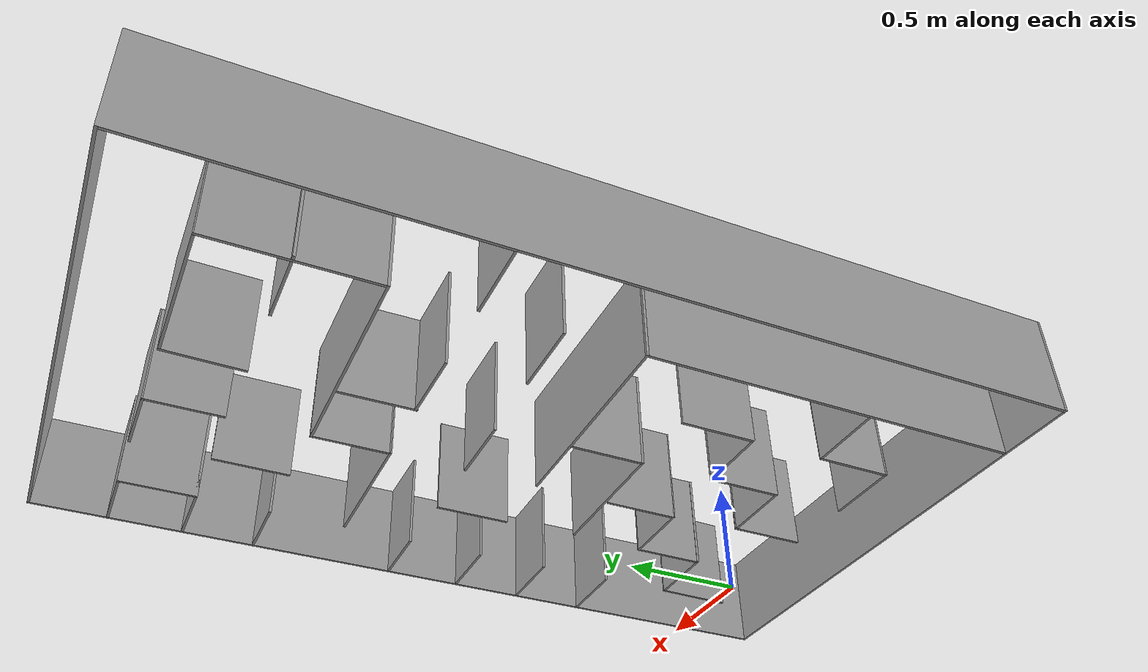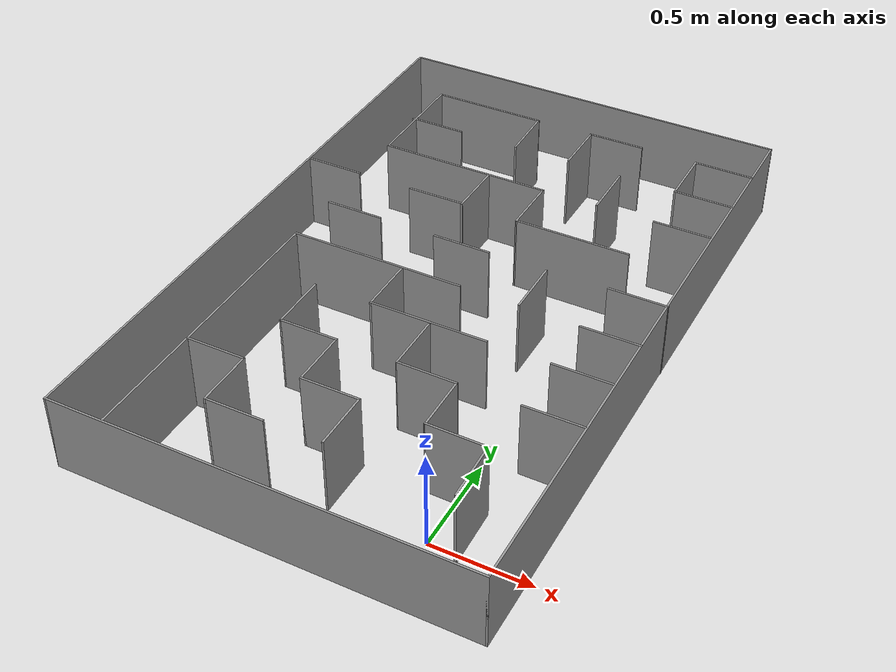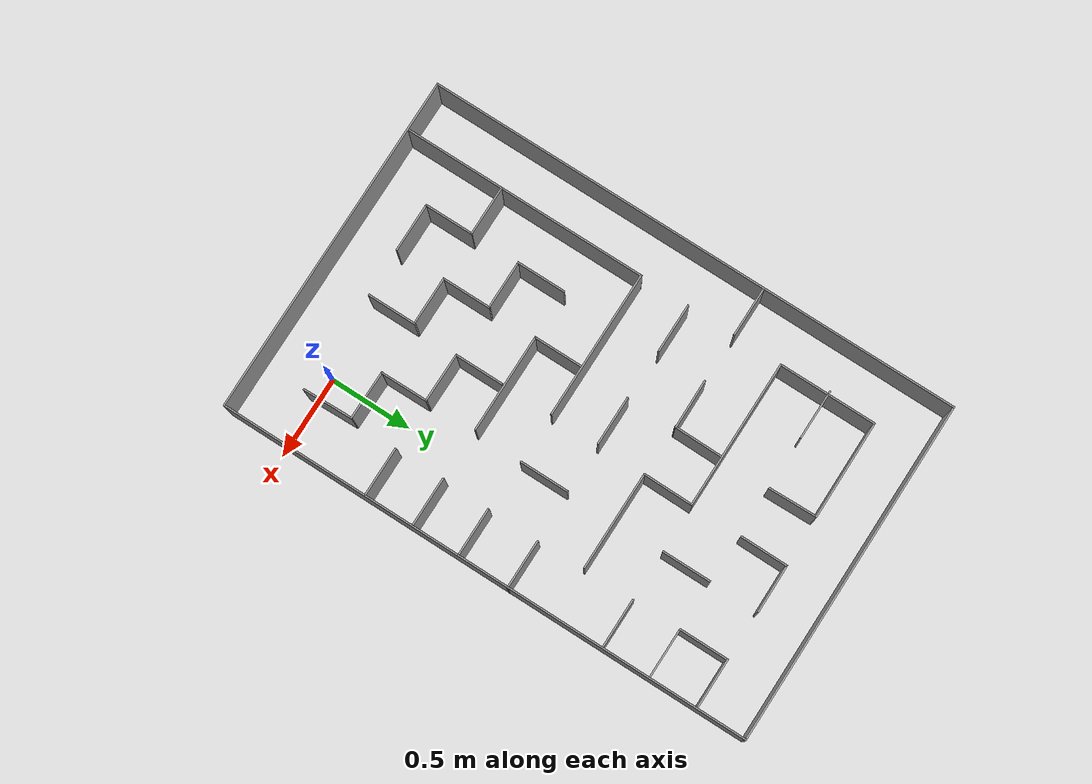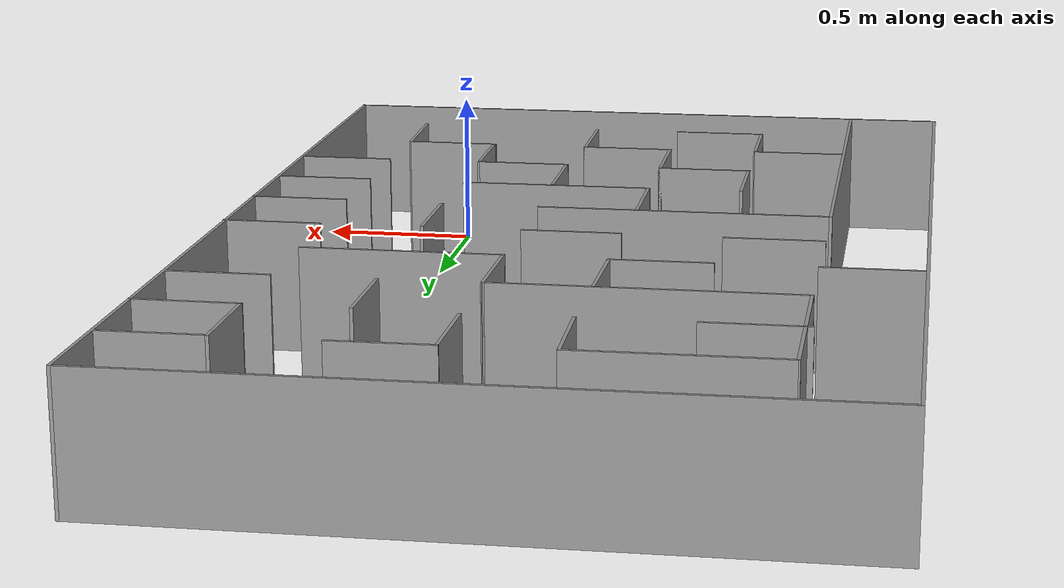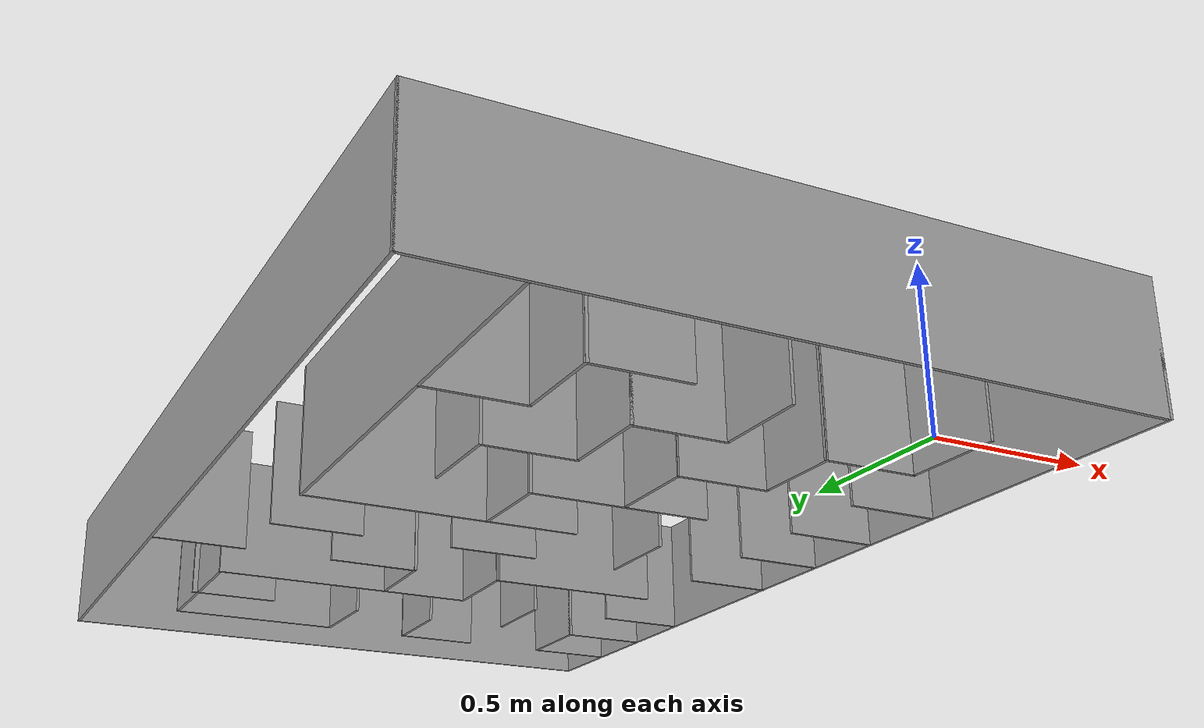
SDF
<?xml version='1.0'?>
<sdf version='1.7'>
  <model name='Labyrinth_30cm'>
    <pose>-0.589 1.293 0 0 -0 0</pose>
    <link name='Wall_0'>
      <collision name='Wall_0_Collision'>
        <geometry>
          <box>
            <size>3.3 0.01 0.4</size>
          </box>
        </geometry>
        <pose>0 0 0.2 0 -0 0</pose>
      </collision>
      <visual name='Wall_0_Visual'>
        <pose>0 0 0.2 0 -0 0</pose>
        <geometry>
          <box>
            <size>3.3 0.01 0.4</size>
          </box>
        </geometry>
        <material>
          <script>
            <uri>file://media/materials/scripts/gazebo.material</uri>
            <name>Gazebo/Grey</name>
          </script>
          <ambient>1 1 1 1</ambient>
        </material>
        <meta>
          <layer>0</layer>
        </meta>
      </visual>
      <pose>-1.046 -0 0 0 -0 1.5708</pose>
    </link>
    <link name='Wall_101'>
      <collision name='Wall_101_Collision'>
        <geometry>
          <box>
            <size>0.310197 0.01 0.4</size>
          </box>
        </geometry>
        <pose>0 0 0.2 0 -0 0</pose>
      </collision>
      <visual name='Wall_101_Visual'>
        <pose>0 0 0.2 0 -0 0</pose>
        <geometry>
          <box>
            <size>0.310197 0.01 0.4</size>
          </box>
        </geometry>
        <material>
          <script>
            <uri>file://media/materials/scripts/gazebo.material</uri>
            <name>Gazebo/Grey</name>
          </script>
          <ambient>1 1 1 1</ambient>
        </material>
        <meta>
          <layer>0</layer>
        </meta>
      </visual>
      <pose>0.890954 1.04525 0 0 -0 3.14159</pose>
    </link>
    <link name='Wall_105'>
      <collision name='Wall_105_Collision'>
        <geometry>
          <box>
            <size>0.306842 0.01 0.4</size>
          </box>
        </geometry>
        <pose>0 0 0.2 0 -0 0</pose>
      </collision>
      <visual name='Wall_105_Visual'>
        <pose>0 0 0.2 0 -0 0</pose>
        <geometry>
          <box>
            <size>0.306842 0.01 0.4</size>
          </box>
        </geometry>
        <material>
          <script>
            <uri>file://media/materials/scripts/gazebo.material</uri>
            <name>Gazebo/Grey</name>
          </script>
          <ambient>1 1 1 1</ambient>
        </material>
        <meta>
          <layer>0</layer>
        </meta>
      </visual>
      <pose>0.740855 1.19365 0 0 -0 1.5708</pose>
    </link>
    <link name='Wall_109'>
      <collision name='Wall_109_Collision'>
        <geometry>
          <box>
            <size>0.311046 0.01 0.4</size>
          </box>
        </geometry>
        <pose>0 0 0.2 0 -0 0</pose>
      </collision>
      <visual name='Wall_109_Visual'>
        <pose>0 0 0.2 0 -0 0</pose>
        <geometry>
          <box>
            <size>0.311046 0.01 0.4</size>
          </box>
        </geometry>
        <material>
          <script>
            <uri>file://media/materials/scripts/gazebo.material</uri>
            <name>Gazebo/Grey</name>
          </script>
          <ambient>1 1 1 1</ambient>
        </material>
        <meta>
          <layer>0</layer>
        </meta>
      </visual>
      <pose>0.891803 1.34205 0 0 -0 0</pose>
    </link>
    <link name='Wall_11'>
      <collision name='Wall_11_Collision'>
        <geometry>
          <box>
            <size>0.9 0.01 0.4</size>
          </box>
        </geometry>
        <pose>0 0 0.2 0 -0 0</pose>
      </collision>
      <visual name='Wall_11_Visual'>
        <pose>0 0 0.2 0 -0 0</pose>
        <geometry>
          <box>
            <size>0.9 0.01 0.4</size>
          </box>
        </geometry>
        <material>
          <script>
            <uri>file://media/materials/scripts/gazebo.material</uri>
            <name>Gazebo/Grey</name>
          </script>
          <ambient>1 1 1 1</ambient>
        </material>
        <meta>
          <layer>0</layer>
        </meta>
      </visual>
      <pose>-0.304 -0.146 0 0 -0 0</pose>
    </link>
    <link name='Wall_13'>
      <collision name='Wall_13_Collision'>
        <geometry>
          <box>
            <size>0.3 0.01 0.4</size>
          </box>
        </geometry>
        <pose>0 0 0.2 0 -0 0</pose>
      </collision>
      <visual name='Wall_13_Visual'>
        <pose>0 0 0.2 0 -0 0</pose>
        <geometry>
          <box>
            <size>0.3 0.01 0.4</size>
          </box>
        </geometry>
        <material>
          <script>
            <uri>file://media/materials/scripts/gazebo.material</uri>
            <name>Gazebo/Grey</name>
          </script>
          <ambient>1 1 1 1</ambient>
        </material>
        <meta>
          <layer>0</layer>
        </meta>
      </visual>
      <pose>-0.453 -0.596 0 0 -0 -1.5708</pose>
    </link>
    <link name='Wall_15'>
      <collision name='Wall_15_Collision'>
        <geometry>
          <box>
            <size>0.3 0.01 0.4</size>
          </box>
        </geometry>
        <pose>0 0 0.2 0 -0 0</pose>
      </collision>
      <visual name='Wall_15_Visual'>
        <pose>0 0 0.2 0 -0 0</pose>
        <geometry>
          <box>
            <size>0.3 0.01 0.4</size>
          </box>
        </geometry>
        <material>
          <script>
            <uri>file://media/materials/scripts/gazebo.material</uri>
            <name>Gazebo/Grey</name>
          </script>
          <ambient>1 1 1 1</ambient>
        </material>
        <meta>
          <layer>0</layer>
        </meta>
      </visual>
      <pose>-0.308 -0.741 0 0 -0 0</pose>
    </link>
    <link name='Wall_17'>
      <collision name='Wall_17_Collision'>
        <geometry>
          <box>
            <size>0.3 0.01 0.4</size>
          </box>
        </geometry>
        <pose>0 0 0.2 0 -0 0</pose>
      </collision>
      <visual name='Wall_17_Visual'>
        <pose>0 0 0.2 0 -0 0</pose>
        <geometry>
          <box>
            <size>0.3 0.01 0.4</size>
          </box>
        </geometry>
        <material>
          <script>
            <uri>file://media/materials/scripts/gazebo.material</uri>
            <name>Gazebo/Grey</name>
          </script>
          <ambient>1 1 1 1</ambient>
        </material>
        <meta>
          <layer>0</layer>
        </meta>
      </visual>
      <pose>-0.163 -0.886 0 0 -0 -1.5708</pose>
    </link>
    <link name='Wall_19'>
      <collision name='Wall_19_Collision'>
        <geometry>
          <box>
            <size>0.3 0.01 0.4</size>
          </box>
        </geometry>
        <pose>0 0 0.2 0 -0 0</pose>
      </collision>
      <visual name='Wall_19_Visual'>
        <pose>0 0 0.2 0 -0 0</pose>
        <geometry>
          <box>
            <size>0.3 0.01 0.4</size>
          </box>
        </geometry>
        <material>
          <script>
            <uri>file://media/materials/scripts/gazebo.material</uri>
            <name>Gazebo/Grey</name>
          </script>
          <ambient>1 1 1 1</ambient>
        </material>
        <meta>
          <layer>0</layer>
        </meta>
      </visual>
      <pose>-0.018 -1.031 0 0 -0 0</pose>
    </link>
    <link name='Wall_2'>
      <collision name='Wall_2_Collision'>
        <geometry>
          <box>
            <size>2.1 0.01 0.4</size>
          </box>
        </geometry>
        <pose>0 0 0.2 0 -0 0</pose>
      </collision>
      <visual name='Wall_2_Visual'>
        <pose>0 0 0.2 0 -0 0</pose>
        <geometry>
          <box>
            <size>2.1 0.01 0.4</size>
          </box>
        </geometry>
        <material>
          <script>
            <uri>file://media/materials/scripts/gazebo.material</uri>
            <name>Gazebo/Grey</name>
          </script>
          <ambient>1 1 1 1</ambient>
        </material>
        <meta>
          <layer>0</layer>
        </meta>
      </visual>
      <pose>-0.001 -1.645 0 0 -0 0</pose>
    </link>
    <link name='Wall_21'>
      <collision name='Wall_21_Collision'>
        <geometry>
          <box>
            <size>0.3 0.01 0.4</size>
          </box>
        </geometry>
        <pose>0 0 0.2 0 -0 0</pose>
      </collision>
      <visual name='Wall_21_Visual'>
        <pose>0 0 0.2 0 -0 0</pose>
        <geometry>
          <box>
            <size>0.3 0.01 0.4</size>
          </box>
        </geometry>
        <material>
          <script>
            <uri>file://media/materials/scripts/gazebo.material</uri>
            <name>Gazebo/Grey</name>
          </script>
          <ambient>1 1 1 1</ambient>
        </material>
        <meta>
          <layer>0</layer>
        </meta>
      </visual>
      <pose>0.127 -1.176 0 0 -0 -1.5708</pose>
    </link>
    <link name='Wall_23'>
      <collision name='Wall_23_Collision'>
        <geometry>
          <box>
            <size>0.3 0.01 0.4</size>
          </box>
        </geometry>
        <pose>0 0 0.2 0 -0 0</pose>
      </collision>
      <visual name='Wall_23_Visual'>
        <pose>0 0 0.2 0 -0 0</pose>
        <geometry>
          <box>
            <size>0.3 0.01 0.4</size>
          </box>
        </geometry>
        <material>
          <script>
            <uri>file://media/materials/scripts/gazebo.material</uri>
            <name>Gazebo/Grey</name>
          </script>
          <ambient>1 1 1 1</ambient>
        </material>
        <meta>
          <layer>0</layer>
        </meta>
      </visual>
      <pose>-0.6 -1.039 0 0 -0 0</pose>
    </link>
    <link name='Wall_26'>
      <collision name='Wall_26_Collision'>
        <geometry>
          <box>
            <size>0.3 0.01 0.4</size>
          </box>
        </geometry>
        <pose>0 0 0.2 0 -0 0</pose>
      </collision>
      <visual name='Wall_26_Visual'>
        <pose>0 0 0.2 0 -0 0</pose>
        <geometry>
          <box>
            <size>0.3 0.01 0.4</size>
          </box>
        </geometry>
        <material>
          <script>
            <uri>file://media/materials/scripts/gazebo.material</uri>
            <name>Gazebo/Grey</name>
          </script>
          <ambient>1 1 1 1</ambient>
        </material>
        <meta>
          <layer>0</layer>
        </meta>
      </visual>
      <pose>-0.45105 -1.18519 0 0 -0 1.57115</pose>
    </link>
    <link name='Wall_33'>
      <collision name='Wall_33_Collision'>
        <geometry>
          <box>
            <size>0.3 0.01 0.4</size>
          </box>
        </geometry>
        <pose>0 0 0.2 0 -0 0</pose>
      </collision>
      <visual name='Wall_33_Visual'>
        <pose>0 0 0.2 0 -0 0</pose>
        <geometry>
          <box>
            <size>0.3 0.01 0.4</size>
          </box>
        </geometry>
        <material>
          <script>
            <uri>file://media/materials/scripts/gazebo.material</uri>
            <name>Gazebo/Grey</name>
          </script>
          <ambient>1 1 1 1</ambient>
        </material>
        <meta>
          <layer>0</layer>
        </meta>
      </visual>
      <pose>-0.306 -1.33 0 0 -0 0</pose>
    </link>
    <link name='Wall_36'>
      <collision name='Wall_36_Collision'>
        <geometry>
          <box>
            <size>0.308623 0.01 0.4</size>
          </box>
        </geometry>
        <pose>0 0 0.2 0 -0 0</pose>
      </collision>
      <visual name='Wall_36_Visual'>
        <pose>0 0 0.2 0 -0 0</pose>
        <geometry>
          <box>
            <size>0.308623 0.01 0.4</size>
          </box>
        </geometry>
        <material>
          <script>
            <uri>file://media/materials/scripts/gazebo.material</uri>
            <name>Gazebo/Grey</name>
          </script>
          <ambient>1 1 1 1</ambient>
        </material>
        <meta>
          <layer>0</layer>
        </meta>
      </visual>
      <pose>0.739219 -1.1837 0 0 -0 1.59612</pose>
    </link>
    <link name='Wall_39'>
      <collision name='Wall_39_Collision'>
        <geometry>
          <box>
            <size>0.301734 0.01 0.4</size>
          </box>
        </geometry>
        <pose>0 0 0.2 0 -0 0</pose>
      </collision>
      <visual name='Wall_39_Visual'>
        <pose>0 0 0.2 0 -0 0</pose>
        <geometry>
          <box>
            <size>0.301734 0.01 0.4</size>
          </box>
        </geometry>
        <material>
          <script>
            <uri>file://media/materials/scripts/gazebo.material</uri>
            <name>Gazebo/Grey</name>
          </script>
          <ambient>1 1 1 1</ambient>
        </material>
        <meta>
          <layer>0</layer>
        </meta>
      </visual>
      <pose>0.58786 -1.03291 0 0 -0 -0.010284</pose>
    </link>
    <link name='Wall_41'>
      <collision name='Wall_41_Collision'>
        <geometry>
          <box>
            <size>0.291453 0.01 0.4</size>
          </box>
        </geometry>
        <pose>0 0 0.2 0 -0 0</pose>
      </collision>
      <visual name='Wall_41_Visual'>
        <pose>0 0 0.2 0 -0 0</pose>
        <geometry>
          <box>
            <size>0.291453 0.01 0.4</size>
          </box>
        </geometry>
        <material>
          <script>
            <uri>file://media/materials/scripts/gazebo.material</uri>
            <name>Gazebo/Grey</name>
          </script>
          <ambient>1 1 1 1</ambient>
        </material>
        <meta>
          <layer>0</layer>
        </meta>
      </visual>
      <pose>0.44286 -0.890703 0 0 -0 1.5769</pose>
    </link>
    <link name='Wall_43'>
      <collision name='Wall_43_Collision'>
        <geometry>
          <box>
            <size>0.303443 0.01 0.4</size>
          </box>
        </geometry>
        <pose>0 0 0.2 0 -0 0</pose>
      </collision>
      <visual name='Wall_43_Visual'>
        <pose>0 0 0.2 0 -0 0</pose>
        <geometry>
          <box>
            <size>0.303443 0.01 0.4</size>
          </box>
        </geometry>
        <material>
          <script>
            <uri>file://media/materials/scripts/gazebo.material</uri>
            <name>Gazebo/Grey</name>
          </script>
          <ambient>1 1 1 1</ambient>
        </material>
        <meta>
          <layer>0</layer>
        </meta>
      </visual>
      <pose>0.295281 -0.749141 0 0 -0 3.13573</pose>
    </link>
    <link name='Wall_46'>
      <collision name='Wall_46_Collision'>
        <geometry>
          <box>
            <size>0.3 0.01 0.4</size>
          </box>
        </geometry>
        <pose>0 0 0.2 0 -0 0</pose>
      </collision>
      <visual name='Wall_46_Visual'>
        <pose>0 0 0.2 0 -0 0</pose>
        <geometry>
          <box>
            <size>0.3 0.01 0.4</size>
          </box>
        </geometry>
        <material>
          <script>
            <uri>file://media/materials/scripts/gazebo.material</uri>
            <name>Gazebo/Grey</name>
          </script>
          <ambient>1 1 1 1</ambient>
        </material>
        <meta>
          <layer>0</layer>
        </meta>
      </visual>
      <pose>0.148562 -0.603281 0 0 -0 1.5708</pose>
    </link>
    <link name='Wall_48'>
      <collision name='Wall_48_Collision'>
        <geometry>
          <box>
            <size>0.6 0.01 0.4</size>
          </box>
        </geometry>
        <pose>0 0 0.2 0 -0 0</pose>
      </collision>
      <visual name='Wall_48_Visual'>
        <pose>0 0 0.2 0 -0 0</pose>
        <geometry>
          <box>
            <size>0.6 0.01 0.4</size>
          </box>
        </geometry>
        <material>
          <script>
            <uri>file://media/materials/scripts/gazebo.material</uri>
            <name>Gazebo/Grey</name>
          </script>
          <ambient>1 1 1 1</ambient>
        </material>
        <meta>
          <layer>0</layer>
        </meta>
      </visual>
      <pose>0.135 -0.443 0 0 -0 3.14159</pose>
    </link>
    <link name='Wall_5'>
      <collision name='Wall_5_Collision'>
        <geometry>
          <box>
            <size>3.3 0.01 0.4</size>
          </box>
        </geometry>
        <pose>0 0 0.2 0 -0 0</pose>
      </collision>
      <visual name='Wall_5_Visual'>
        <pose>0 0 0.2 0 -0 0</pose>
        <geometry>
          <box>
            <size>3.3 0.01 0.4</size>
          </box>
        </geometry>
        <material>
          <script>
            <uri>file://media/materials/scripts/gazebo.material</uri>
            <name>Gazebo/Grey</name>
          </script>
          <ambient>1 1 1 1</ambient>
        </material>
        <meta>
          <layer>0</layer>
        </meta>
      </visual>
      <pose>1.044 -0 0 0 -0 1.5708</pose>
    </link>
    <link name='Wall_50'>
      <collision name='Wall_50_Collision'>
        <geometry>
          <box>
            <size>0.3 0.01 0.4</size>
          </box>
        </geometry>
        <pose>0 0 0.2 0 -0 0</pose>
      </collision>
      <visual name='Wall_50_Visual'>
        <pose>0 0 0.2 0 -0 0</pose>
        <geometry>
          <box>
            <size>0.3 0.01 0.4</size>
          </box>
        </geometry>
        <material>
          <script>
            <uri>file://media/materials/scripts/gazebo.material</uri>
            <name>Gazebo/Grey</name>
          </script>
          <ambient>1 1 1 1</ambient>
        </material>
        <meta>
          <layer>0</layer>
        </meta>
      </visual>
      <pose>-0.16 -0.298 0 0 -0 1.5708</pose>
    </link>
    <link name='Wall_52'>
      <collision name='Wall_52_Collision'>
        <geometry>
          <box>
            <size>0.3 0.01 0.4</size>
          </box>
        </geometry>
        <pose>0 0 0.2 0 -0 0</pose>
      </collision>
      <visual name='Wall_52_Visual'>
        <pose>0 0 0.2 0 -0 0</pose>
        <geometry>
          <box>
            <size>0.3 0.01 0.4</size>
          </box>
        </geometry>
        <material>
          <script>
            <uri>file://media/materials/scripts/gazebo.material</uri>
            <name>Gazebo/Grey</name>
          </script>
          <ambient>1 1 1 1</ambient>
        </material>
        <meta>
          <layer>0</layer>
        </meta>
      </visual>
      <pose>0.893 -0.746 0 0 -0 0</pose>
    </link>
    <link name='Wall_54'>
      <collision name='Wall_54_Collision'>
        <geometry>
          <box>
            <size>0.3 0.01 0.4</size>
          </box>
        </geometry>
        <pose>0 0 0.2 0 -0 0</pose>
      </collision>
      <visual name='Wall_54_Visual'>
        <pose>0 0 0.2 0 -0 0</pose>
        <geometry>
          <box>
            <size>0.3 0.01 0.4</size>
          </box>
        </geometry>
        <material>
          <script>
            <uri>file://media/materials/scripts/gazebo.material</uri>
            <name>Gazebo/Grey</name>
          </script>
          <ambient>1 1 1 1</ambient>
        </material>
        <meta>
          <layer>0</layer>
        </meta>
      </visual>
      <pose>0.890313 -0.445 0 0 -0 0</pose>
    </link>
    <link name='Wall_57'>
      <collision name='Wall_57_Collision'>
        <geometry>
          <box>
            <size>0.3 0.01 0.4</size>
          </box>
        </geometry>
        <pose>0 0 0.2 0 -0 0</pose>
      </collision>
      <visual name='Wall_57_Visual'>
        <pose>0 0 0.2 0 -0 0</pose>
        <geometry>
          <box>
            <size>0.3 0.01 0.4</size>
          </box>
        </geometry>
        <material>
          <script>
            <uri>file://media/materials/scripts/gazebo.material</uri>
            <name>Gazebo/Grey</name>
          </script>
          <ambient>1 1 1 1</ambient>
        </material>
        <meta>
          <layer>0</layer>
        </meta>
      </visual>
      <pose>-0.6 0.154 0 0 -0 0</pose>
    </link>
    <link name='Wall_59'>
      <collision name='Wall_59_Collision'>
        <geometry>
          <box>
            <size>0.3 0.01 0.4</size>
          </box>
        </geometry>
        <pose>0 0 0.2 0 -0 0</pose>
      </collision>
      <visual name='Wall_59_Visual'>
        <pose>0 0 0.2 0 -0 0</pose>
        <geometry>
          <box>
            <size>0.3 0.01 0.4</size>
          </box>
        </geometry>
        <material>
          <script>
            <uri>file://media/materials/scripts/gazebo.material</uri>
            <name>Gazebo/Grey</name>
          </script>
          <ambient>1 1 1 1</ambient>
        </material>
        <meta>
          <layer>0</layer>
        </meta>
      </visual>
      <pose>-0.00307 0.149 0 0 -0 0</pose>
    </link>
    <link name='Wall_6'>
      <collision name='Wall_6_Collision'>
        <geometry>
          <box>
            <size>2.1 0.01 0.4</size>
          </box>
        </geometry>
        <pose>0 0 0.2 0 -0 0</pose>
      </collision>
      <visual name='Wall_6_Visual'>
        <pose>0 0 0.2 0 -0 0</pose>
        <geometry>
          <box>
            <size>2.1 0.01 0.4</size>
          </box>
        </geometry>
        <material>
          <script>
            <uri>file://media/materials/scripts/gazebo.material</uri>
            <name>Gazebo/Grey</name>
          </script>
          <ambient>1 1 1 1</ambient>
        </material>
        <meta>
          <layer>0</layer>
        </meta>
      </visual>
      <pose>-0.001 1.645 0 0 -0 3.14159</pose>
    </link>
    <link name='Wall_61'>
      <collision name='Wall_61_Collision'>
        <geometry>
          <box>
            <size>0.3 0.01 0.4</size>
          </box>
        </geometry>
        <pose>0 0 0.2 0 -0 0</pose>
      </collision>
      <visual name='Wall_61_Visual'>
        <pose>0 0 0.2 0 -0 0</pose>
        <geometry>
          <box>
            <size>0.3 0.01 0.4</size>
          </box>
        </geometry>
        <material>
          <script>
            <uri>file://media/materials/scripts/gazebo.material</uri>
            <name>Gazebo/Grey</name>
          </script>
          <ambient>1 1 1 1</ambient>
        </material>
        <meta>
          <layer>0</layer>
        </meta>
      </visual>
      <pose>0.445228 0.001 0 0 -0 -1.5708</pose>
    </link>
    <link name='Wall_63'>
      <collision name='Wall_63_Collision'>
        <geometry>
          <box>
            <size>0.3 0.01 0.4</size>
          </box>
        </geometry>
        <pose>0 0 0.2 0 -0 0</pose>
      </collision>
      <visual name='Wall_63_Visual'>
        <pose>0 0 0.2 0 -0 0</pose>
        <geometry>
          <box>
            <size>0.3 0.01 0.4</size>
          </box>
        </geometry>
        <material>
          <script>
            <uri>file://media/materials/scripts/gazebo.material</uri>
            <name>Gazebo/Grey</name>
          </script>
          <ambient>1 1 1 1</ambient>
        </material>
        <meta>
          <layer>0</layer>
        </meta>
      </visual>
      <pose>0.901 0.159 0 0 -0 0</pose>
    </link>
    <link name='Wall_65'>
      <collision name='Wall_65_Collision'>
        <geometry>
          <box>
            <size>0.3 0.01 0.4</size>
          </box>
        </geometry>
        <pose>0 0 0.2 0 -0 0</pose>
      </collision>
      <visual name='Wall_65_Visual'>
        <pose>0 0 0.2 0 -0 0</pose>
        <geometry>
          <box>
            <size>0.3 0.01 0.4</size>
          </box>
        </geometry>
        <material>
          <script>
            <uri>file://media/materials/scripts/gazebo.material</uri>
            <name>Gazebo/Grey</name>
          </script>
          <ambient>1 1 1 1</ambient>
        </material>
        <meta>
          <layer>0</layer>
        </meta>
      </visual>
      <pose>0.898 -0.154 0 0 -0 0</pose>
    </link>
    <link name='Wall_67'>
      <collision name='Wall_67_Collision'>
        <geometry>
          <box>
            <size>0.3 0.01 0.4</size>
          </box>
        </geometry>
        <pose>0 0 0.2 0 -0 0</pose>
      </collision>
      <visual name='Wall_67_Visual'>
        <pose>0 0 0.2 0 -0 0</pose>
        <geometry>
          <box>
            <size>0.3 0.01 0.4</size>
          </box>
        </geometry>
        <material>
          <script>
            <uri>file://media/materials/scripts/gazebo.material</uri>
            <name>Gazebo/Grey</name>
          </script>
          <ambient>1 1 1 1</ambient>
        </material>
        <meta>
          <layer>0</layer>
        </meta>
      </visual>
      <pose>-0.150185 1.19095 0 0 -0 1.5902</pose>
    </link>
    <link name='Wall_70'>
      <collision name='Wall_70_Collision'>
        <geometry>
          <box>
            <size>0.6 0.01 0.4</size>
          </box>
        </geometry>
        <pose>0 0 0.2 0 -0 0</pose>
      </collision>
      <visual name='Wall_70_Visual'>
        <pose>0 0 0.2 0 -0 0</pose>
        <geometry>
          <box>
            <size>0.6 0.01 0.4</size>
          </box>
        </geometry>
        <material>
          <script>
            <uri>file://media/materials/scripts/gazebo.material</uri>
            <name>Gazebo/Grey</name>
          </script>
          <ambient>1 1 1 1</ambient>
        </material>
        <meta>
          <layer>0</layer>
        </meta>
      </visual>
      <pose>0.442 0.445 0 0 -0 3.14159</pose>
    </link>
    <link name='Wall_72'>
      <collision name='Wall_72_Collision'>
        <geometry>
          <box>
            <size>0.308983 0.01 0.4</size>
          </box>
        </geometry>
        <pose>0 0 0.2 0 -0 0</pose>
      </collision>
      <visual name='Wall_72_Visual'>
        <pose>0 0 0.2 0 -0 0</pose>
        <geometry>
          <box>
            <size>0.308983 0.01 0.4</size>
          </box>
        </geometry>
        <material>
          <script>
            <uri>file://media/materials/scripts/gazebo.material</uri>
            <name>Gazebo/Grey</name>
          </script>
          <ambient>1 1 1 1</ambient>
        </material>
        <meta>
          <layer>0</layer>
        </meta>
      </visual>
      <pose>0.148495 0.594484 0 0 -0 1.5608</pose>
    </link>
    <link name='Wall_75'>
      <collision name='Wall_75_Collision'>
        <geometry>
          <box>
            <size>0.3 0.01 0.4</size>
          </box>
        </geometry>
        <pose>0 0 0.2 0 -0 0</pose>
      </collision>
      <visual name='Wall_75_Visual'>
        <pose>0 0 0.2 0 -0 0</pose>
        <geometry>
          <box>
            <size>0.3 0.01 0.4</size>
          </box>
        </geometry>
        <material>
          <script>
            <uri>file://media/materials/scripts/gazebo.material</uri>
            <name>Gazebo/Grey</name>
          </script>
          <ambient>1 1 1 1</ambient>
        </material>
        <meta>
          <layer>0</layer>
        </meta>
      </visual>
      <pose>-0.893 0.448 0 0 -0 3.14159</pose>
    </link>
    <link name='Wall_77'>
      <collision name='Wall_77_Collision'>
        <geometry>
          <box>
            <size>0.303004 0.01 0.4</size>
          </box>
        </geometry>
        <pose>0 0 0.2 0 -0 0</pose>
      </collision>
      <visual name='Wall_77_Visual'>
        <pose>0 0 0.2 0 -0 0</pose>
        <geometry>
          <box>
            <size>0.303004 0.01 0.4</size>
          </box>
        </geometry>
        <material>
          <script>
            <uri>file://media/materials/scripts/gazebo.material</uri>
            <name>Gazebo/Grey</name>
          </script>
          <ambient>1 1 1 1</ambient>
        </material>
        <meta>
          <layer>0</layer>
        </meta>
      </visual>
      <pose>-0.302505 0.449521 0 0 -0 0.010386</pose>
    </link>
    <link name='Wall_80'>
      <collision name='Wall_80_Collision'>
        <geometry>
          <box>
            <size>0.300016 0.01 0.4</size>
          </box>
        </geometry>
        <pose>0 0 0.2 0 -0 0</pose>
      </collision>
      <visual name='Wall_80_Visual'>
        <pose>0 0 0.2 0 -0 0</pose>
        <geometry>
          <box>
            <size>0.300016 0.01 0.4</size>
          </box>
        </geometry>
        <material>
          <script>
            <uri>file://media/materials/scripts/gazebo.material</uri>
            <name>Gazebo/Grey</name>
          </script>
          <ambient>1 1 1 1</ambient>
        </material>
        <meta>
          <layer>0</layer>
        </meta>
      </visual>
      <pose>-0.154511 0.593054 0 0 -0 -1.58114</pose>
    </link>
    <link name='Wall_82'>
      <collision name='Wall_82_Collision'>
        <geometry>
          <box>
            <size>0.9 0.01 0.4</size>
          </box>
        </geometry>
        <pose>0 0 0.2 0 -0 0</pose>
      </collision>
      <visual name='Wall_82_Visual'>
        <pose>0 0 0.2 0 -0 0</pose>
        <geometry>
          <box>
            <size>0.9 0.01 0.4</size>
          </box>
        </geometry>
        <material>
          <script>
            <uri>file://media/materials/scripts/gazebo.material</uri>
            <name>Gazebo/Grey</name>
          </script>
          <ambient>1 1 1 1</ambient>
        </material>
        <meta>
          <layer>0</layer>
        </meta>
      </visual>
      <pose>-0.298 0.743984 0 0 -0 3.14156</pose>
    </link>
    <link name='Wall_84'>
      <collision name='Wall_84_Collision'>
        <geometry>
          <box>
            <size>0.6 0.01 0.4</size>
          </box>
        </geometry>
        <pose>0 0 0.2 0 -0 0</pose>
      </collision>
      <visual name='Wall_84_Visual'>
        <pose>0 0 0.2 0 -0 0</pose>
        <geometry>
          <box>
            <size>0.6 0.01 0.4</size>
          </box>
        </geometry>
        <material>
          <script>
            <uri>file://media/materials/scripts/gazebo.material</uri>
            <name>Gazebo/Grey</name>
          </script>
          <ambient>1 1 1 1</ambient>
        </material>
        <meta>
          <layer>0</layer>
        </meta>
      </visual>
      <pose>-0.743 1.039 0 0 -0 1.5708</pose>
    </link>
    <link name='Wall_86'>
      <collision name='Wall_86_Collision'>
        <geometry>
          <box>
            <size>0.6 0.01 0.4</size>
          </box>
        </geometry>
        <pose>0 0 0.2 0 -0 0</pose>
      </collision>
      <visual name='Wall_86_Visual'>
        <pose>0 0 0.2 0 -0 0</pose>
        <geometry>
          <box>
            <size>0.6 0.01 0.4</size>
          </box>
        </geometry>
        <material>
          <script>
            <uri>file://media/materials/scripts/gazebo.material</uri>
            <name>Gazebo/Grey</name>
          </script>
          <ambient>1 1 1 1</ambient>
        </material>
        <meta>
          <layer>0</layer>
        </meta>
      </visual>
      <pose>-0.448 1.335 0 0 -0 0.00339</pose>
    </link>
    <link name='Wall_89'>
      <collision name='Wall_89_Collision'>
        <geometry>
          <box>
            <size>0.3 0.01 0.4</size>
          </box>
        </geometry>
        <pose>0 0 0.2 0 -0 0</pose>
      </collision>
      <visual name='Wall_89_Visual'>
        <pose>0 0 0.2 0 -0 0</pose>
        <geometry>
          <box>
            <size>0.3 0.01 0.4</size>
          </box>
        </geometry>
        <material>
          <script>
            <uri>file://media/materials/scripts/gazebo.material</uri>
            <name>Gazebo/Grey</name>
          </script>
          <ambient>1 1 1 1</ambient>
        </material>
        <meta>
          <layer>0</layer>
        </meta>
      </visual>
      <pose>-0.615 1.043 0 0 -0 3.14159</pose>
    </link>
    <link name='Wall_9'>
      <collision name='Wall_9_Collision'>
        <geometry>
          <box>
            <size>1.5 0.01 0.4</size>
          </box>
        </geometry>
        <pose>0 0 0.2 0 -0 0</pose>
      </collision>
      <visual name='Wall_9_Visual'>
        <pose>0 0 0.2 0 -0 0</pose>
        <geometry>
          <box>
            <size>1.5 0.01 0.4</size>
          </box>
        </geometry>
        <material>
          <script>
            <uri>file://media/materials/scripts/gazebo.material</uri>
            <name>Gazebo/Grey</name>
          </script>
          <ambient>1 1 1 1</ambient>
        </material>
        <meta>
          <layer>0</layer>
        </meta>
      </visual>
      <pose>-0.749 -0.891 0 0 -0 -1.5708</pose>
    </link>
    <link name='Wall_91'>
      <collision name='Wall_91_Collision'>
        <geometry>
          <box>
            <size>0.292145 0.01 0.4</size>
          </box>
        </geometry>
        <pose>0 0 0.2 0 -0 0</pose>
      </collision>
      <visual name='Wall_91_Visual'>
        <pose>0 0 0.2 0 -0 0</pose>
        <geometry>
          <box>
            <size>0.292145 0.01 0.4</size>
          </box>
        </geometry>
        <material>
          <script>
            <uri>file://media/materials/scripts/gazebo.material</uri>
            <name>Gazebo/Grey</name>
          </script>
          <ambient>1 1 1 1</ambient>
        </material>
        <meta>
          <layer>0</layer>
        </meta>
      </visual>
      <pose>0.151948 1.19886 0 0 -0 1.56383</pose>
    </link>
    <link name='Wall_94'>
      <collision name='Wall_94_Collision'>
        <geometry>
          <box>
            <size>0.296077 0.01 0.4</size>
          </box>
        </geometry>
        <pose>0 0 0.2 0 -0 0</pose>
      </collision>
      <visual name='Wall_94_Visual'>
        <pose>0 0 0.2 0 -0 0</pose>
        <geometry>
          <box>
            <size>0.296077 0.01 0.4</size>
          </box>
        </geometry>
        <material>
          <script>
            <uri>file://media/materials/scripts/gazebo.material</uri>
            <name>Gazebo/Grey</name>
          </script>
          <ambient>1 1 1 1</ambient>
        </material>
        <meta>
          <layer>0</layer>
        </meta>
      </visual>
      <pose>0.295966 1.34298 0 0 -0 -3.134</pose>
    </link>
    <link name='Wall_97'>
      <collision name='Wall_97_Collision'>
        <geometry>
          <box>
            <size>0.3 0.01 0.4</size>
          </box>
        </geometry>
        <pose>0 0 0.2 0 -0 0</pose>
      </collision>
      <visual name='Wall_97_Visual'>
        <pose>0 0 0.2 0 -0 0</pose>
        <geometry>
          <box>
            <size>0.3 0.01 0.4</size>
          </box>
        </geometry>
        <material>
          <script>
            <uri>file://media/materials/scripts/gazebo.material</uri>
            <name>Gazebo/Grey</name>
          </script>
          <ambient>1 1 1 1</ambient>
        </material>
        <meta>
          <layer>0</layer>
        </meta>
      </visual>
      <pose>0.442 0.897 0 0 -0 1.5708</pose>
    </link>
    <link name='Wall_99'>
      <collision name='Wall_99_Collision'>
        <geometry>
          <box>
            <size>0.3 0.01 0.4</size>
          </box>
        </geometry>
        <pose>0 0 0.2 0 -0 0</pose>
      </collision>
      <visual name='Wall_99_Visual'>
        <pose>0 0 0.2 0 -0 0</pose>
        <geometry>
          <box>
            <size>0.3 0.01 0.4</size>
          </box>
        </geometry>
        <material>
          <script>
            <uri>file://media/materials/scripts/gazebo.material</uri>
            <name>Gazebo/Grey</name>
          </script>
          <ambient>1 1 1 1</ambient>
        </material>
        <meta>
          <layer>0</layer>
        </meta>
      </visual>
      <pose>0.89 0.752 0 0 -0 0</pose>
    </link>
    <static>1</static>
  </model>
</sdf>
